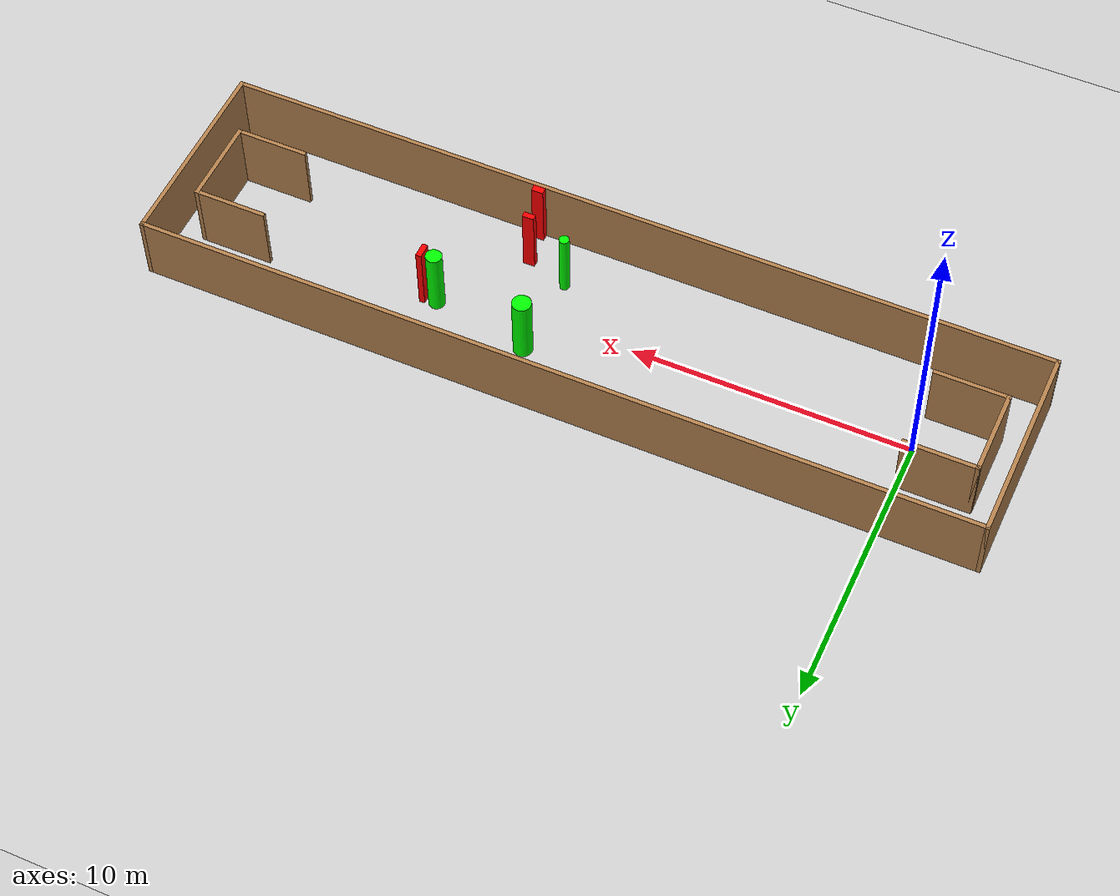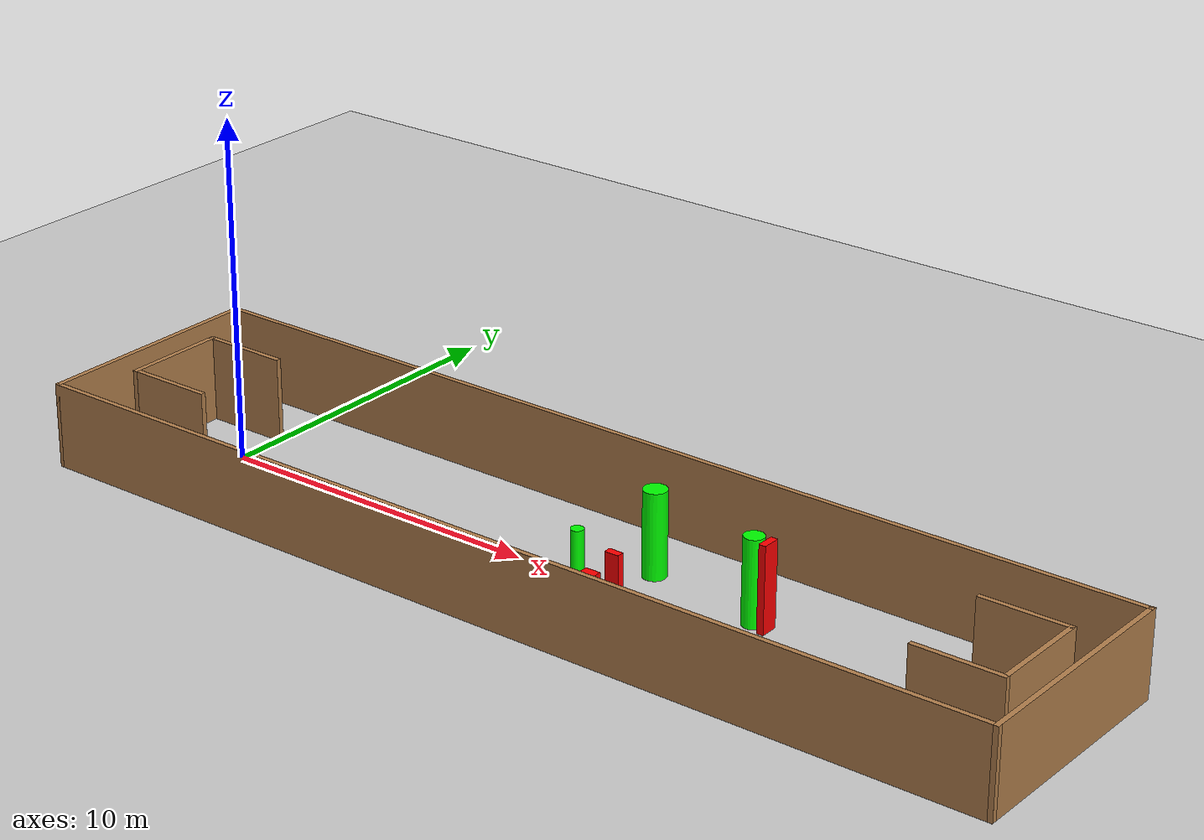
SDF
<sdf version="1.7">
 <world name="default">
  <light name="sun" type="directional">
   <pose>0 0 10 0 -0 0</pose>
   <diffuse>0.8 0.8 0.8 1</diffuse>
   <specular>0.2 0.2 0.2 1</specular>
   <attenuation>
    <range>1000</range>
    <constant>0.9</constant>
    <linear>0.01</linear>
    <quadratic>0.001</quadratic>
   </attenuation>
   <direction>-0.5 0.1 -0.9</direction>
   <spot><inner_angle>0</inner_angle><outer_angle>0</outer_angle><falloff>0</falloff></spot>
  </light>
  <model name="ground_plane">
   <static>1</static>
   <link name="link">
    <collision name="collision">
     <geometry><plane><normal>0 0 1</normal><size>100 100</size></plane></geometry>
     <surface>
      <contact><collide_bitmask>65535</collide_bitmask></contact>
      <friction><ode><mu>100</mu><mu2>50</mu2></ode></friction>
     </surface>
    </collision>
    <visual name="visual">
     <cast_shadows>0</cast_shadows>
     <geometry><plane><normal>0 0 1</normal><size>100 100</size></plane></geometry>
     <material>
      <script><uri>file://media/materials/scripts/gazebo.material</uri><name>Gazebo/Grey</name></script>
     </material>
    </visual>
   </link>
  </model>
  <gravity>0 0 -9.8</gravity>
  <magnetic_field>6e-06 2.3e-05 -4.2e-05</magnetic_field>
  <atmosphere type="adiabatic"/>
  <physics type="ode">
   <max_step_size>0.001</max_step_size>
   <real_time_factor>1</real_time_factor>
   <real_time_update_rate>1000</real_time_update_rate>
  </physics>
  <scene><ambient>0.4 0.4 0.4 1</ambient><background>0.7 0.7 0.7 1</background><shadows>1</shadows></scene>
  <spherical_coordinates>
   <surface_model>EARTH_WGS84</surface_model>
   <latitude_deg>0</latitude_deg>
   <longitude_deg>0</longitude_deg>
   <elevation>0</elevation>
   <heading_deg>0</heading_deg>
  </spherical_coordinates>
  <model name="my_base_walls">
   <link name="Wall_0">
    <collision name="Wall_0_Collision">
     <geometry><box><size>7.15 0.15 2.5</size></box></geometry>
     <pose>0 0 1.25 0 -0 0</pose>
    </collision>
    <visual name="Wall_0_Visual">
     <pose>0 0 1.25 0 -0 0</pose>
     <geometry><box><size>7.15 0.15 2.5</size></box></geometry>
     <material>
      <script><uri>file://media/materials/scripts/gazebo.material</uri><name>Gazebo/Wood</name></script>
      <ambient>1 1 1 1</ambient>
     </material>
     <meta><layer>0</layer></meta>
    </visual>
    <pose>-15 0 0 0 -0 1.5708</pose>
   </link>
   <link name="Wall_10">
    <collision name="Wall_10_Collision">
     <geometry><box><size>2.65 0.15 2.5</size></box></geometry>
     <pose>0 0 1.25 0 -0 0</pose>
    </collision>
    <visual name="Wall_10_Visual">
     <pose>0 0 1.25 0 -0 0</pose>
     <geometry><box><size>2.65 0.15 2.5</size></box></geometry>
     <material>
      <script><uri>file://media/materials/scripts/gazebo.material</uri><name>Gazebo/Wood</name></script>
      <ambient>1 1 1 1</ambient>
     </material>
     <meta><layer>0</layer></meta>
    </visual>
    <pose>-12.75 -1.5 0 0 -0 0</pose>
   </link>
   <link name="Wall_12">
    <collision name="Wall_12_Collision">
     <geometry><box><size>2.65 0.15 2.5</size></box></geometry>
     <pose>0 0 1.25 0 -0 0</pose>
    </collision>
    <visual name="Wall_12_Visual">
     <pose>0 0 1.25 0 -0 0</pose>
     <geometry><box><size>2.65 0.15 2.5</size></box></geometry>
     <material>
      <script><uri>file://media/materials/scripts/gazebo.material</uri><name>Gazebo/Wood</name></script>
      <ambient>1 1 1 1</ambient>
     </material>
     <meta><layer>0</layer></meta>
    </visual>
    <pose>-12.75 1.5 0 0 -0 0</pose>
   </link>
   <link name="Wall_14">
    <collision name="Wall_14_Collision">
     <geometry><box><size>3.15 0.15 2.5</size></box></geometry>
     <pose>0 0 1.25 0 -0 0</pose>
    </collision>
    <visual name="Wall_14_Visual">
     <pose>0 0 1.25 0 -0 0</pose>
     <geometry><box><size>3.15 0.15 2.5</size></box></geometry>
     <material>
      <script><uri>file://media/materials/scripts/gazebo.material</uri><name>Gazebo/Wood</name></script>
      <ambient>1 1 1 1</ambient>
     </material>
     <meta><layer>0</layer></meta>
    </visual>
    <pose>14 0 0 0 -0 -1.5708</pose>
   </link>
   <link name="Wall_15">
    <collision name="Wall_15_Collision">
     <geometry><box><size>2.65 0.15 2.5</size></box></geometry>
     <pose>0 0 1.25 0 -0 0</pose>
    </collision>
    <visual name="Wall_15_Visual">
     <pose>0 0 1.25 0 -0 0</pose>
     <geometry><box><size>2.65 0.15 2.5</size></box></geometry>
     <material>
      <script><uri>file://media/materials/scripts/gazebo.material</uri><name>Gazebo/Wood</name></script>
      <ambient>1 1 1 1</ambient>
     </material>
     <meta><layer>0</layer></meta>
    </visual>
    <pose>12.75 -1.5 0 0 -0 3.14159</pose>
   </link>
   <link name="Wall_17">
    <collision name="Wall_17_Collision">
     <geometry><box><size>2.65 0.15 2.5</size></box></geometry>
     <pose>0 0 1.25 0 -0 0</pose>
    </collision>
    <visual name="Wall_17_Visual">
     <pose>0 0 1.25 0 -0 0</pose>
     <geometry><box><size>2.65 0.15 2.5</size></box></geometry>
     <material>
      <script><uri>file://media/materials/scripts/gazebo.material</uri><name>Gazebo/Wood</name></script>
      <ambient>1 1 1 1</ambient>
     </material>
     <meta><layer>0</layer></meta>
    </visual>
    <pose>12.75 1.5 0 0 -0 3.14159</pose>
   </link>
   <link name="Wall_2">
    <collision name="Wall_2_Collision">
     <geometry><box><size>30.15 0.15 2.5</size></box></geometry>
     <pose>0 0 1.25 0 -0 0</pose>
    </collision>
    <visual name="Wall_2_Visual">
     <pose>0 0 1.25 0 -0 0</pose>
     <geometry><box><size>30.15 0.15 2.5</size></box></geometry>
     <material>
      <script><uri>file://media/materials/scripts/gazebo.material</uri><name>Gazebo/Wood</name></script>
      <ambient>1 1 1 1</ambient>
     </material>
     <meta><layer>0</layer></meta>
    </visual>
    <pose>-0 -3.5 0 0 -0 0</pose>
   </link>
   <link name="Wall_4">
    <collision name="Wall_4_Collision">
     <geometry><box><size>30.15 0.15 2.5</size></box></geometry>
     <pose>0 0 1.25 0 -0 0</pose>
    </collision>
    <visual name="Wall_4_Visual">
     <pose>0 0 1.25 0 -0 0</pose>
     <geometry><box><size>30.15 0.15 2.5</size></box></geometry>
     <material>
      <script><uri>file://media/materials/scripts/gazebo.material</uri><name>Gazebo/Wood</name></script>
      <ambient>1 1 1 1</ambient>
     </material>
     <meta><layer>0</layer></meta>
    </visual>
    <pose>-0 3.5 0 0 -0 0</pose>
   </link>
   <link name="Wall_6">
    <collision name="Wall_6_Collision">
     <geometry><box><size>7.15 0.15 2.5</size></box></geometry>
     <pose>0 0 1.25 0 -0 0</pose>
    </collision>
    <visual name="Wall_6_Visual">
     <pose>0 0 1.25 0 -0 0</pose>
     <geometry><box><size>7.15 0.15 2.5</size></box></geometry>
     <material>
      <script><uri>file://media/materials/scripts/gazebo.material</uri><name>Gazebo/Wood</name></script>
      <ambient>1 1 1 1</ambient>
     </material>
     <meta><layer>0</layer></meta>
    </visual>
    <pose>15 0 0 0 -0 -1.5708</pose>
   </link>
   <link name="Wall_9">
    <collision name="Wall_9_Collision">
     <geometry><box><size>3.15 0.15 2.5</size></box></geometry>
     <pose>0 0 1.25 0 -0 0</pose>
    </collision>
    <visual name="Wall_9_Visual">
     <pose>0 0 1.25 0 -0 0</pose>
     <geometry><box><size>3.15 0.15 2.5</size></box></geometry>
     <material>
      <script><uri>file://media/materials/scripts/gazebo.material</uri><name>Gazebo/Wood</name></script>
      <ambient>1 1 1 1</ambient>
     </material>
     <meta><layer>0</layer></meta>
    </visual>
    <pose>-14 0 0 0 -0 -1.5708</pose>
   </link>
   <static>1</static>
   <pose>11.5 0 0 0 -0 0</pose>
  </model>
  <model name="cylinder1">
   <static>1</static>
   <link name="link">
    <inertial>
     <mass>1</mass>
     <inertia><ixx>0.5</ixx><ixy>0</ixy><ixz>0</ixz><iyy>0.5</iyy><iyz>0</iyz><izz>1</izz></inertia>
    </inertial>
    <collision name="collision">
     <geometry><cylinder><radius>0.3411099285277731</radius><length>2.5</length></cylinder></geometry>
    </collision>
    <visual name="visual">
     <geometry><cylinder><radius>0.3411099285277731</radius><length>2.5</length></cylinder></geometry>
     <material>
      <ambient>0 1 0 1</ambient>
      <diffuse>0 1 0 1</diffuse>
      <specular>0.1 0.1 0.1 1</specular>
      <emissive>0 0 0 0</emissive>
     </material>
    </visual>
   </link>
   <pose>13.396555899820557 1.3920838761008394 1.25 0 0 0</pose>
  </model>
  <model name="cylinder2">
   <static>1</static>
   <link name="link">
    <inertial>
     <mass>1</mass>
     <inertia><ixx>0.5</ixx><ixy>0</ixy><ixz>0</ixz><iyy>0.5</iyy><iyz>0</iyz><izz>1</izz></inertia>
    </inertial>
    <collision name="collision">
     <geometry><cylinder><radius>0.17987975294693964</radius><length>2.5</length></cylinder></geometry>
    </collision>
    <visual name="visual">
     <geometry><cylinder><radius>0.17987975294693964</radius><length>2.5</length></cylinder></geometry>
     <material>
      <ambient>0 1 0 1</ambient>
      <diffuse>0 1 0 1</diffuse>
      <specular>0.1 0.1 0.1 1</specular>
      <emissive>0 0 0 0</emissive>
     </material>
    </visual>
   </link>
   <pose>13.231655617866767 -1.6392230052553587 1.25 0 0 0</pose>
  </model>
  <model name="cylinder3">
   <static>1</static>
   <link name="link">
    <inertial>
     <mass>1</mass>
     <inertia><ixx>0.5</ixx><ixy>0</ixy><ixz>0</ixz><iyy>0.5</iyy><iyz>0</iyz><izz>1</izz></inertia>
    </inertial>
    <collision name="collision">
     <geometry><cylinder><radius>0.28929876571399854</radius><length>2.5</length></cylinder></geometry>
    </collision>
    <visual name="visual">
     <geometry><cylinder><radius>0.28929876571399854</radius><length>2.5</length></cylinder></geometry>
     <material>
      <ambient>0 1 0 1</ambient>
      <diffuse>0 1 0 1</diffuse>
      <specular>0.1 0.1 0.1 1</specular>
      <emissive>0 0 0 0</emissive>
     </material>
    </visual>
   </link>
   <pose>16.917210165956828 0.7823331219091791 1.25 0 0 0</pose>
  </model>
  <model name="box1">
   <static>1</static>
   <link name="link">
    <inertial>
     <mass>1</mass>
     <inertia><ixx>0.083</ixx><ixy>0</ixy><ixz>0</ixz><iyy>0.083</iyy><iyz>0</iyz><izz>0.083</izz></inertia>
    </inertial>
    <collision name="collision">
     <geometry><box><size>0.4266159819826038 0.2464099958000121 2.5</size></box></geometry>
    </collision>
    <visual name="visual">
     <geometry><box><size>0.4266159819826038 0.2464099958000121 2.5</size></box></geometry>
     <material>
      <ambient>1 0 0 1</ambient>
      <diffuse>1 0 0 1</diffuse>
      <specular>0.1 0.1 0.1 1</specular>
      <emissive>0 0 0 0</emissive>
     </material>
    </visual>
    <sensor name="my_contact" type="contact">
     <contact><collision>box_collision</collision><topic>__default_topic__</topic></contact>
    </sensor>
   </link>
   <pose>14.943657535976941 -3.3046938325611066 1.25 0 0 0</pose>
  </model>
  <model name="box2">
   <static>1</static>
   <link name="link">
    <inertial>
     <mass>1</mass>
     <inertia><ixx>0.083</ixx><ixy>0</ixy><ixz>0</ixz><iyy>0.083</iyy><iyz>0</iyz><izz>0.083</izz></inertia>
    </inertial>
    <collision name="collision">
     <geometry><box><size>0.418162777086247 0.21305913861793901 2.5</size></box></geometry>
    </collision>
    <visual name="visual">
     <geometry><box><size>0.418162777086247 0.21305913861793901 2.5</size></box></geometry>
     <material>
      <ambient>1 0 0 1</ambient>
      <diffuse>1 0 0 1</diffuse>
      <specular>0.1 0.1 0.1 1</specular>
      <emissive>0 0 0 0</emissive>
     </material>
    </visual>
    <sensor name="my_contact" type="contact">
     <contact><collision>box_collision</collision><topic>__default_topic__</topic></contact>
    </sensor>
   </link>
   <pose>14.745900411213754 -2.1053592812829787 1.25 0 0 0</pose>
  </model>
  <model name="box3">
   <static>1</static>
   <link name="link">
    <inertial>
     <mass>1</mass>
     <inertia><ixx>0.083</ixx><ixy>0</ixy><ixz>0</ixz><iyy>0.083</iyy><iyz>0</iyz><izz>0.083</izz></inertia>
    </inertial>
    <collision name="collision">
     <geometry><box><size>0.203743599497085 0.5326749960765563 2.5</size></box></geometry>
    </collision>
    <visual name="visual">
     <geometry><box><size>0.203743599497085 0.5326749960765563 2.5</size></box></geometry>
     <material>
      <ambient>1 0 0 1</ambient>
      <diffuse>1 0 0 1</diffuse>
      <specular>0.1 0.1 0.1 1</specular>
      <emissive>0 0 0 0</emissive>
     </material>
    </visual>
    <sensor name="my_contact" type="contact">
     <contact><collision>box_collision</collision><topic>__default_topic__</topic></contact>
    </sensor>
   </link>
   <pose>17.388346561115988 0.7169107036980273 1.25 0 0 0</pose>
  </model>
 </world>
</sdf>
